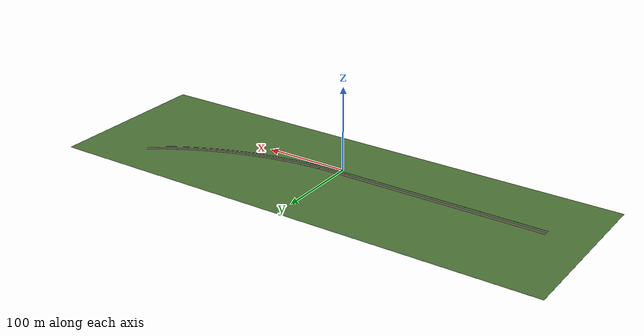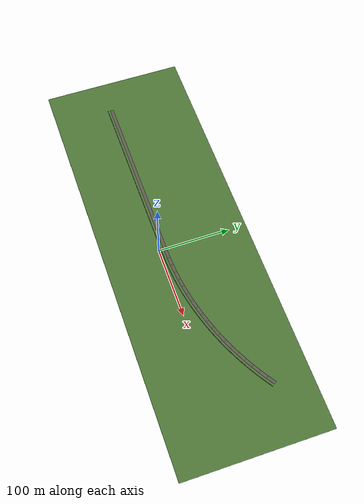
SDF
<sdf version="1.9">
 <world name="railway_environment">
  <model name="landscape">
   <static>true</static>
   <link name="ground">
    <collision name="ground_collision">
     <pose>0 25 -0.12 0 0 0</pose>
     <geometry><box><size>600 200 0.20</size></box></geometry>
    </collision>
    <visual name="ground_visual">
     <pose>0 25 -0.12 0 0 0</pose>
     <geometry><box><size>600 200 0.20</size></box></geometry>
     <material><ambient>0.20 0.31 0.14 1</ambient><diffuse>0.31 0.47 0.22 1</diffuse></material>
    </visual>
    <visual name="service_road_tangent">
     <pose>-124 9 0.015 0 0 0</pose>
     <geometry><box><size>252 4.5 0.03</size></box></geometry>
     <material><diffuse>0.38 0.36 0.32 1</diffuse></material>
    </visual>
    <visual name="drainage_tangent">
     <pose>-124 3.25 0.03 0 0 0</pose>
     <geometry><box><size>252 0.60 0.08</size></box></geometry>
     <material><diffuse>0.24 0.28 0.28 1</diffuse></material>
    </visual>
    <visual name="service_road_curve_00">
     <pose>7.8648 9.0440 0.015 0 0 0.015000</pose>
     <geometry><box><size>12.15 4.5 0.03</size></box></geometry>
     <material><diffuse>0.38 0.36 0.32 1</diffuse></material>
    </visual>
    <visual name="drainage_curve_00">
     <pose>7.9510 3.2946 0.03 0 0 0.015000</pose>
     <geometry><box><size>12.15 0.60 0.08</size></box></geometry>
     <material><diffuse>0.24 0.28 0.28 1</diffuse></material>
    </visual>
    <visual name="service_road_curve_01">
     <pose>19.5891 9.3958 0.015 0 0 0.045000</pose>
     <geometry><box><size>12.15 4.5 0.03</size></box></geometry>
     <material><diffuse>0.38 0.36 0.32 1</diffuse></material>
    </visual>
    <visual name="drainage_curve_01">
     <pose>19.8477 3.6516 0.03 0 0 0.045000</pose>
     <geometry><box><size>12.15 0.60 0.08</size></box></geometry>
     <material><diffuse>0.24 0.28 0.28 1</diffuse></material>
    </visual>
    <visual name="service_road_curve_02">
     <pose>31.2975 10.0992 0.015 0 0 0.075000</pose>
     <geometry><box><size>12.15 4.5 0.03</size></box></geometry>
     <material><diffuse>0.38 0.36 0.32 1</diffuse></material>
    </visual>
    <visual name="drainage_curve_02">
     <pose>31.7284 4.3653 0.03 0 0 0.075000</pose>
     <geometry><box><size>12.15 0.60 0.08</size></box></geometry>
     <material><diffuse>0.24 0.28 0.28 1</diffuse></material>
    </visual>
    <visual name="service_road_curve_03">
     <pose>42.9796 11.1534 0.015 0 0 0.105000</pose>
     <geometry><box><size>12.15 4.5 0.03</size></box></geometry>
     <material><diffuse>0.38 0.36 0.32 1</diffuse></material>
    </visual>
    <visual name="drainage_curve_03">
     <pose>43.5822 5.4351 0.03 0 0 0.105000</pose>
     <geometry><box><size>12.15 0.60 0.08</size></box></geometry>
     <material><diffuse>0.24 0.28 0.28 1</diffuse></material>
    </visual>
    <visual name="service_road_curve_04">
     <pose>54.6248 12.5576 0.015 0 0 0.135000</pose>
     <geometry><box><size>12.15 4.5 0.03</size></box></geometry>
     <material><diffuse>0.38 0.36 0.32 1</diffuse></material>
    </visual>
    <visual name="drainage_curve_04">
     <pose>55.3987 6.8599 0.03 0 0 0.135000</pose>
     <geometry><box><size>12.15 0.60 0.08</size></box></geometry>
     <material><diffuse>0.24 0.28 0.28 1</diffuse></material>
    </visual>
    <visual name="service_road_curve_05">
     <pose>66.2227 14.3104 0.015 0 0 0.165000</pose>
     <geometry><box><size>12.15 4.5 0.03</size></box></geometry>
     <material><diffuse>0.38 0.36 0.32 1</diffuse></material>
    </visual>
    <visual name="drainage_curve_05">
     <pose>67.1671 8.6385 0.03 0 0 0.165000</pose>
     <geometry><box><size>12.15 0.60 0.08</size></box></geometry>
     <material><diffuse>0.24 0.28 0.28 1</diffuse></material>
    </visual>
    <visual name="service_road_curve_06">
     <pose>77.7627 16.4104 0.015 0 0 0.195000</pose>
     <geometry><box><size>12.15 4.5 0.03</size></box></geometry>
     <material><diffuse>0.38 0.36 0.32 1</diffuse></material>
    </visual>
    <visual name="drainage_curve_06">
     <pose>78.8769 10.7693 0.03 0 0 0.195000</pose>
     <geometry><box><size>12.15 0.60 0.08</size></box></geometry>
     <material><diffuse>0.24 0.28 0.28 1</diffuse></material>
    </visual>
    <visual name="service_road_curve_07">
     <pose>89.2346 18.8555 0.015 0 0 0.225000</pose>
     <geometry><box><size>12.15 4.5 0.03</size></box></geometry>
     <material><diffuse>0.38 0.36 0.32 1</diffuse></material>
    </visual>
    <visual name="drainage_curve_07">
     <pose>90.5174 13.2504 0.03 0 0 0.225000</pose>
     <geometry><box><size>12.15 0.60 0.08</size></box></geometry>
     <material><diffuse>0.24 0.28 0.28 1</diffuse></material>
    </visual>
    <visual name="service_road_curve_08">
     <pose>100.6280 21.6437 0.015 0 0 0.255000</pose>
     <geometry><box><size>12.15 4.5 0.03</size></box></geometry>
     <material><diffuse>0.38 0.36 0.32 1</diffuse></material>
    </visual>
    <visual name="drainage_curve_08">
     <pose>102.0784 16.0796 0.03 0 0 0.255000</pose>
     <geometry><box><size>12.15 0.60 0.08</size></box></geometry>
     <material><diffuse>0.24 0.28 0.28 1</diffuse></material>
    </visual>
    <visual name="service_road_curve_09">
     <pose>111.9326 24.7723 0.015 0 0 0.285000</pose>
     <geometry><box><size>12.15 4.5 0.03</size></box></geometry>
     <material><diffuse>0.38 0.36 0.32 1</diffuse></material>
    </visual>
    <visual name="drainage_curve_09">
     <pose>113.5492 19.2542 0.03 0 0 0.285000</pose>
     <geometry><box><size>12.15 0.60 0.08</size></box></geometry>
     <material><diffuse>0.24 0.28 0.28 1</diffuse></material>
    </visual>
    <visual name="service_road_curve_10">
     <pose>123.1382 28.2386 0.015 0 0 0.315000</pose>
     <geometry><box><size>12.15 4.5 0.03</size></box></geometry>
     <material><diffuse>0.38 0.36 0.32 1</diffuse></material>
    </visual>
    <visual name="drainage_curve_10">
     <pose>124.9197 22.7715 0.03 0 0 0.315000</pose>
     <geometry><box><size>12.15 0.60 0.08</size></box></geometry>
     <material><diffuse>0.24 0.28 0.28 1</diffuse></material>
    </visual>
    <visual name="service_road_curve_11">
     <pose>134.2349 32.0395 0.015 0 0 0.345000</pose>
     <geometry><box><size>12.15 4.5 0.03</size></box></geometry>
     <material><diffuse>0.38 0.36 0.32 1</diffuse></material>
    </visual>
    <visual name="drainage_curve_11">
     <pose>136.1795 26.6283 0.03 0 0 0.345000</pose>
     <geometry><box><size>12.15 0.60 0.08</size></box></geometry>
     <material><diffuse>0.24 0.28 0.28 1</diffuse></material>
    </visual>
    <visual name="service_road_curve_12">
     <pose>145.2126 36.1715 0.015 0 0 0.375000</pose>
     <geometry><box><size>12.15 4.5 0.03</size></box></geometry>
     <material><diffuse>0.38 0.36 0.32 1</diffuse></material>
    </visual>
    <visual name="drainage_curve_12">
     <pose>147.3186 30.8211 0.03 0 0 0.375000</pose>
     <geometry><box><size>12.15 0.60 0.08</size></box></geometry>
     <material><diffuse>0.24 0.28 0.28 1</diffuse></material>
    </visual>
    <visual name="service_road_curve_13">
     <pose>156.0613 40.6310 0.015 0 0 0.405000</pose>
     <geometry><box><size>12.15 4.5 0.03</size></box></geometry>
     <material><diffuse>0.38 0.36 0.32 1</diffuse></material>
    </visual>
    <visual name="drainage_curve_13">
     <pose>158.3269 35.3461 0.03 0 0 0.405000</pose>
     <geometry><box><size>12.15 0.60 0.08</size></box></geometry>
     <material><diffuse>0.24 0.28 0.28 1</diffuse></material>
    </visual>
    <visual name="service_road_curve_14">
     <pose>166.7715 45.4138 0.015 0 0 0.435000</pose>
     <geometry><box><size>12.15 4.5 0.03</size></box></geometry>
     <material><diffuse>0.38 0.36 0.32 1</diffuse></material>
    </visual>
    <visual name="drainage_curve_14">
     <pose>169.1946 40.1993 0.03 0 0 0.435000</pose>
     <geometry><box><size>12.15 0.60 0.08</size></box></geometry>
     <material><diffuse>0.24 0.28 0.28 1</diffuse></material>
    </visual>
    <visual name="service_road_curve_15">
     <pose>177.3333 50.5158 0.015 0 0 0.465000</pose>
     <geometry><box><size>12.15 4.5 0.03</size></box></geometry>
     <material><diffuse>0.38 0.36 0.32 1</diffuse></material>
    </visual>
    <visual name="drainage_curve_15">
     <pose>179.9117 45.3763 0.03 0 0 0.465000</pose>
     <geometry><box><size>12.15 0.60 0.08</size></box></geometry>
     <material><diffuse>0.24 0.28 0.28 1</diffuse></material>
    </visual>
    <visual name="service_road_curve_16">
     <pose>187.7374 55.9322 0.015 0 0 0.495000</pose>
     <geometry><box><size>12.15 4.5 0.03</size></box></geometry>
     <material><diffuse>0.38 0.36 0.32 1</diffuse></material>
    </visual>
    <visual name="drainage_curve_16">
     <pose>190.4688 50.8724 0.03 0 0 0.495000</pose>
     <geometry><box><size>12.15 0.60 0.08</size></box></geometry>
     <material><diffuse>0.24 0.28 0.28 1</diffuse></material>
    </visual>
    <visual name="service_road_curve_17">
     <pose>197.9743 61.6583 0.015 0 0 0.525000</pose>
     <geometry><box><size>12.15 4.5 0.03</size></box></geometry>
     <material><diffuse>0.38 0.36 0.32 1</diffuse></material>
    </visual>
    <visual name="drainage_curve_17">
     <pose>200.8563 56.6827 0.03 0 0 0.525000</pose>
     <geometry><box><size>12.15 0.60 0.08</size></box></geometry>
     <material><diffuse>0.24 0.28 0.28 1</diffuse></material>
    </visual>
    <visual name="service_road_curve_18">
     <pose>208.0348 67.6889 0.015 0 0 0.555000</pose>
     <geometry><box><size>12.15 4.5 0.03</size></box></geometry>
     <material><diffuse>0.38 0.36 0.32 1</diffuse></material>
    </visual>
    <visual name="drainage_curve_18">
     <pose>211.0648 62.8020 0.03 0 0 0.555000</pose>
     <geometry><box><size>12.15 0.60 0.08</size></box></geometry>
     <material><diffuse>0.24 0.28 0.28 1</diffuse></material>
    </visual>
    <visual name="service_road_curve_19">
     <pose>217.9100 74.0186 0.015 0 0 0.585000</pose>
     <geometry><box><size>12.15 4.5 0.03</size></box></geometry>
     <material><diffuse>0.38 0.36 0.32 1</diffuse></material>
    </visual>
    <visual name="drainage_curve_19">
     <pose>221.0851 69.2247 0.03 0 0 0.585000</pose>
     <geometry><box><size>12.15 0.60 0.08</size></box></geometry>
     <material><diffuse>0.24 0.28 0.28 1</diffuse></material>
    </visual>
   </link>
  </model>
 </world>
</sdf>
